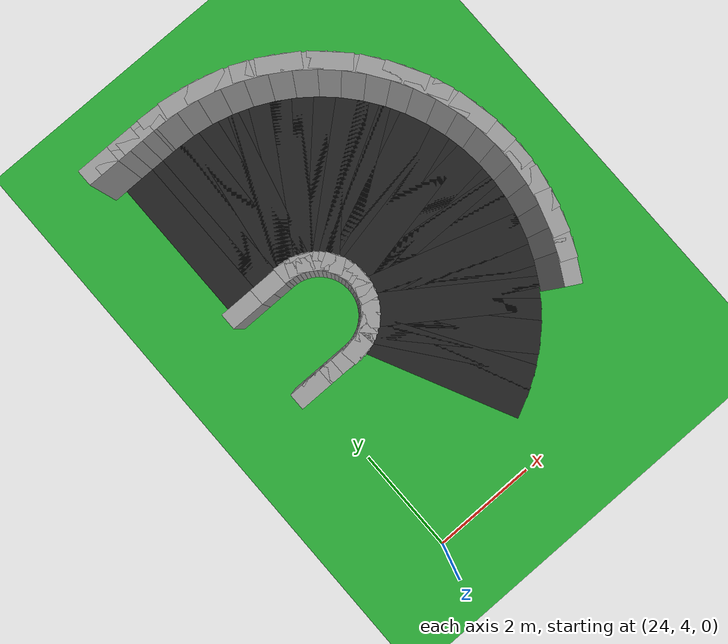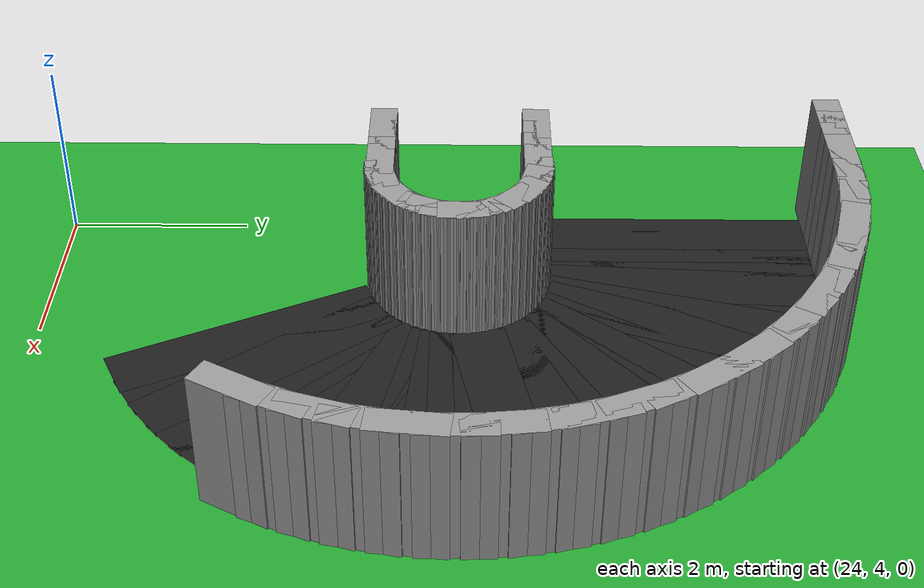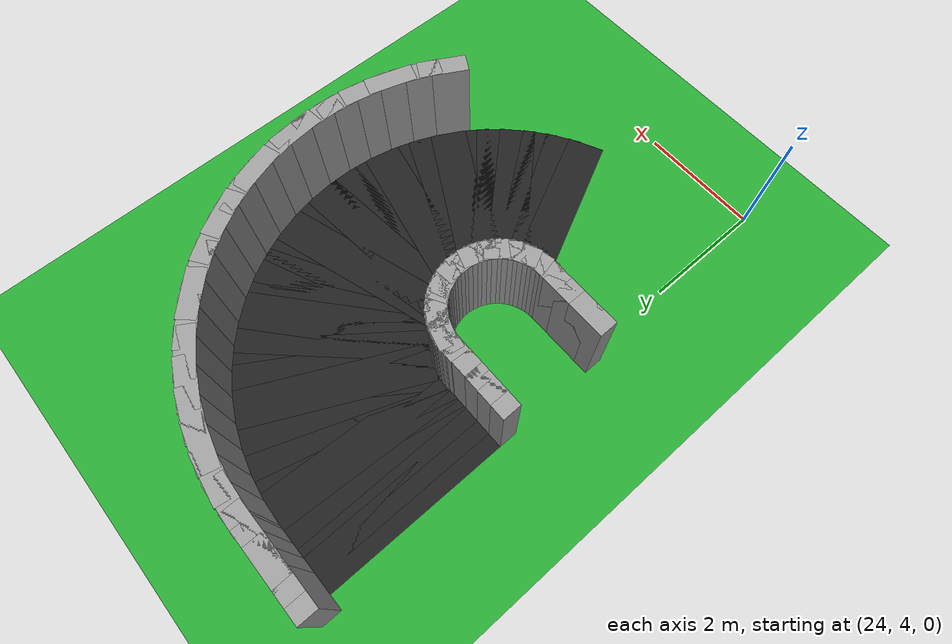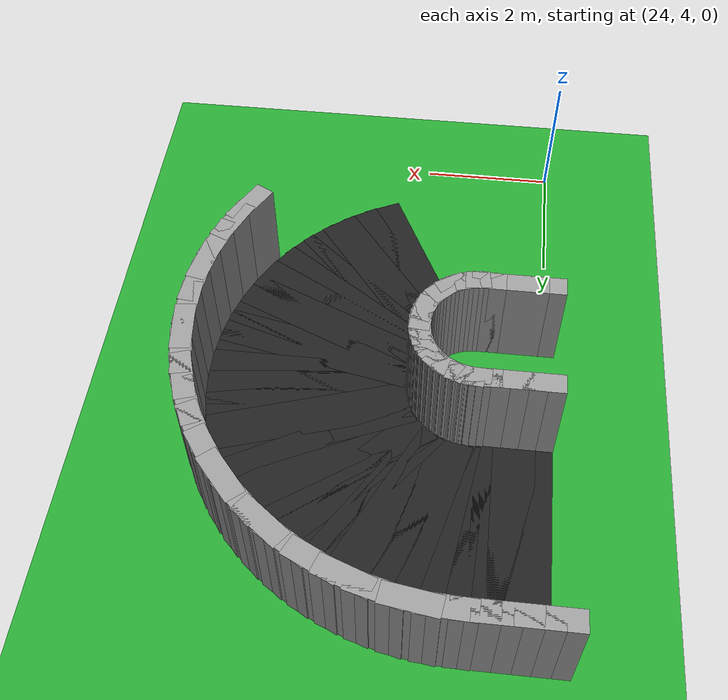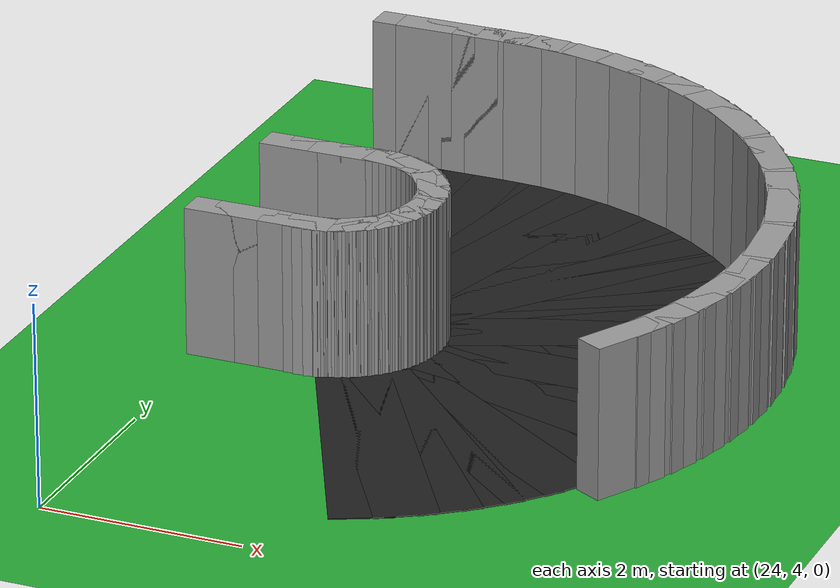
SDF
<sdf version="1.6">
 <world name="loop_extreme">
  <include><uri>model://sun</uri></include>
  <model name="ground_plane">
   <static>true</static>
   <link name="link">
    <collision name="collision">
     <surface><friction><ode><mu>100</mu><mu2>50</mu2></ode></friction></surface>
     <geometry><plane><normal>0 0 1</normal><size>120 120</size></plane></geometry>
    </collision>
    <visual name="visual">
     <geometry><plane><normal>0 0 1</normal><size>120 120</size></plane></geometry>
     <material>
      <script><uri>file://media/materials/scripts/gazebo.material</uri><name>Gazebo/Green</name></script>
     </material>
    </visual>
   </link>
  </model>
  <model name="curbL_110">
   <static>true</static>
   <pose>24.127 7.652 0.750 0 0 0.00000</pose>
   <link name="link">
    <collision name="collision"><geometry><box><size>0.610 0.300 1.500</size></box></geometry></collision>
    <visual name="visual">
     <geometry><box><size>0.610 0.300 1.500</size></box></geometry>
     <material>
      <script><uri>file://media/materials/scripts/gazebo.material</uri><name>Gazebo/Grey</name></script>
     </material>
    </visual>
   </link>
  </model>
  <model name="curbL_111">
   <static>true</static>
   <pose>24.377 7.652 0.750 0 0 0.00000</pose>
   <link name="link">
    <collision name="collision"><geometry><box><size>0.610 0.300 1.500</size></box></geometry></collision>
    <visual name="visual">
     <geometry><box><size>0.610 0.300 1.500</size></box></geometry>
     <material>
      <script><uri>file://media/materials/scripts/gazebo.material</uri><name>Gazebo/Grey</name></script>
     </material>
    </visual>
   </link>
  </model>
  <model name="curbL_112">
   <static>true</static>
   <pose>24.627 7.652 0.750 0 0 0.00000</pose>
   <link name="link">
    <collision name="collision"><geometry><box><size>0.610 0.300 1.500</size></box></geometry></collision>
    <visual name="visual">
     <geometry><box><size>0.610 0.300 1.500</size></box></geometry>
     <material>
      <script><uri>file://media/materials/scripts/gazebo.material</uri><name>Gazebo/Grey</name></script>
     </material>
    </visual>
   </link>
  </model>
  <model name="curbL_113">
   <static>true</static>
   <pose>24.877 7.652 0.750 0 0 0.00000</pose>
   <link name="link">
    <collision name="collision"><geometry><box><size>0.610 0.300 1.500</size></box></geometry></collision>
    <visual name="visual">
     <geometry><box><size>0.610 0.300 1.500</size></box></geometry>
     <material>
      <script><uri>file://media/materials/scripts/gazebo.material</uri><name>Gazebo/Grey</name></script>
     </material>
    </visual>
   </link>
  </model>
  <model name="curbL_114">
   <static>true</static>
   <pose>25.045 7.654 0.750 0 0 0.05067</pose>
   <link name="link">
    <collision name="collision"><geometry><box><size>0.446 0.300 1.500</size></box></geometry></collision>
    <visual name="visual">
     <geometry><box><size>0.446 0.300 1.500</size></box></geometry>
     <material>
      <script><uri>file://media/materials/scripts/gazebo.material</uri><name>Gazebo/Grey</name></script>
     </material>
    </visual>
   </link>
  </model>
  <model name="curbL_115">
   <static>true</static>
   <pose>25.130 7.663 0.750 0 0 0.15201</pose>
   <link name="link">
    <collision name="collision"><geometry><box><size>0.446 0.300 1.500</size></box></geometry></collision>
    <visual name="visual">
     <geometry><box><size>0.446 0.300 1.500</size></box></geometry>
     <material>
      <script><uri>file://media/materials/scripts/gazebo.material</uri><name>Gazebo/Grey</name></script>
     </material>
    </visual>
   </link>
  </model>
  <model name="curbL_116">
   <static>true</static>
   <pose>25.215 7.680 0.750 0 0 0.25335</pose>
   <link name="link">
    <collision name="collision"><geometry><box><size>0.446 0.300 1.500</size></box></geometry></collision>
    <visual name="visual">
     <geometry><box><size>0.446 0.300 1.500</size></box></geometry>
     <material>
      <script><uri>file://media/materials/scripts/gazebo.material</uri><name>Gazebo/Grey</name></script>
     </material>
    </visual>
   </link>
  </model>
  <model name="curbL_117">
   <static>true</static>
   <pose>25.297 7.706 0.750 0 0 0.35470</pose>
   <link name="link">
    <collision name="collision"><geometry><box><size>0.446 0.300 1.500</size></box></geometry></collision>
    <visual name="visual">
     <geometry><box><size>0.446 0.300 1.500</size></box></geometry>
     <material>
      <script><uri>file://media/materials/scripts/gazebo.material</uri><name>Gazebo/Grey</name></script>
     </material>
    </visual>
   </link>
  </model>
  <model name="asphalt_118">
   <static>true</static>
   <pose>26.102 6.260 0.005 0 0 0.45604</pose>
   <link name="link">
    <visual name="visual">
     <geometry><box><size>0.613 3.000 0.010</size></box></geometry>
     <material>
      <script><uri>file://media/materials/scripts/gazebo.material</uri><name>Gazebo/Black</name></script>
     </material>
    </visual>
   </link>
  </model>
  <model name="curbL_118">
   <static>true</static>
   <pose>25.376 7.740 0.750 0 0 0.45604</pose>
   <link name="link">
    <collision name="collision"><geometry><box><size>0.446 0.300 1.500</size></box></geometry></collision>
    <visual name="visual">
     <geometry><box><size>0.446 0.300 1.500</size></box></geometry>
     <material>
      <script><uri>file://media/materials/scripts/gazebo.material</uri><name>Gazebo/Grey</name></script>
     </material>
    </visual>
   </link>
  </model>
  <model name="asphalt_119">
   <static>true</static>
   <pose>26.323 6.383 0.005 0 0 0.55738</pose>
   <link name="link">
    <visual name="visual">
     <geometry><box><size>0.613 3.000 0.010</size></box></geometry>
     <material>
      <script><uri>file://media/materials/scripts/gazebo.material</uri><name>Gazebo/Black</name></script>
     </material>
    </visual>
   </link>
  </model>
  <model name="curbL_119">
   <static>true</static>
   <pose>25.451 7.781 0.750 0 0 0.55738</pose>
   <link name="link">
    <collision name="collision"><geometry><box><size>0.446 0.300 1.500</size></box></geometry></collision>
    <visual name="visual">
     <geometry><box><size>0.446 0.300 1.500</size></box></geometry>
     <material>
      <script><uri>file://media/materials/scripts/gazebo.material</uri><name>Gazebo/Grey</name></script>
     </material>
    </visual>
   </link>
  </model>
  <model name="asphalt_120">
   <static>true</static>
   <pose>26.531 6.528 0.005 0 0 0.65872</pose>
   <link name="link">
    <visual name="visual">
     <geometry><box><size>0.613 3.000 0.010</size></box></geometry>
     <material>
      <script><uri>file://media/materials/scripts/gazebo.material</uri><name>Gazebo/Black</name></script>
     </material>
    </visual>
   </link>
  </model>
  <model name="curbL_120">
   <static>true</static>
   <pose>25.522 7.831 0.750 0 0 0.65872</pose>
   <link name="link">
    <collision name="collision"><geometry><box><size>0.446 0.300 1.500</size></box></geometry></collision>
    <visual name="visual">
     <geometry><box><size>0.446 0.300 1.500</size></box></geometry>
     <material>
      <script><uri>file://media/materials/scripts/gazebo.material</uri><name>Gazebo/Grey</name></script>
     </material>
    </visual>
   </link>
  </model>
  <model name="asphalt_121">
   <static>true</static>
   <pose>26.723 6.692 0.005 0 0 0.76006</pose>
   <link name="link">
    <visual name="visual">
     <geometry><box><size>0.613 3.000 0.010</size></box></geometry>
     <material>
      <script><uri>file://media/materials/scripts/gazebo.material</uri><name>Gazebo/Black</name></script>
     </material>
    </visual>
   </link>
  </model>
  <model name="curbL_121">
   <static>true</static>
   <pose>25.587 7.887 0.750 0 0 0.76006</pose>
   <link name="link">
    <collision name="collision"><geometry><box><size>0.446 0.300 1.500</size></box></geometry></collision>
    <visual name="visual">
     <geometry><box><size>0.446 0.300 1.500</size></box></geometry>
     <material>
      <script><uri>file://media/materials/scripts/gazebo.material</uri><name>Gazebo/Grey</name></script>
     </material>
    </visual>
   </link>
  </model>
  <model name="asphalt_122">
   <static>true</static>
   <pose>26.897 6.876 0.005 0 0 0.86140</pose>
   <link name="link">
    <visual name="visual">
     <geometry><box><size>0.613 3.000 0.010</size></box></geometry>
     <material>
      <script><uri>file://media/materials/scripts/gazebo.material</uri><name>Gazebo/Black</name></script>
     </material>
    </visual>
   </link>
  </model>
  <model name="curbL_122">
   <static>true</static>
   <pose>25.647 7.949 0.750 0 0 0.86140</pose>
   <link name="link">
    <collision name="collision"><geometry><box><size>0.446 0.300 1.500</size></box></geometry></collision>
    <visual name="visual">
     <geometry><box><size>0.446 0.300 1.500</size></box></geometry>
     <material>
      <script><uri>file://media/materials/scripts/gazebo.material</uri><name>Gazebo/Grey</name></script>
     </material>
    </visual>
   </link>
  </model>
  <model name="asphalt_123">
   <static>true</static>
   <pose>27.052 7.076 0.005 0 0 0.96275</pose>
   <link name="link">
    <visual name="visual">
     <geometry><box><size>0.613 3.000 0.010</size></box></geometry>
     <material>
      <script><uri>file://media/materials/scripts/gazebo.material</uri><name>Gazebo/Black</name></script>
     </material>
    </visual>
   </link>
  </model>
  <model name="curbL_123">
   <static>true</static>
   <pose>25.699 8.017 0.750 0 0 0.96275</pose>
   <link name="link">
    <collision name="collision"><geometry><box><size>0.446 0.300 1.500</size></box></geometry></collision>
    <visual name="visual">
     <geometry><box><size>0.446 0.300 1.500</size></box></geometry>
     <material>
      <script><uri>file://media/materials/scripts/gazebo.material</uri><name>Gazebo/Grey</name></script>
     </material>
    </visual>
   </link>
  </model>
  <model name="asphalt_124">
   <static>true</static>
   <pose>27.186 7.291 0.005 0 0 1.06409</pose>
   <link name="link">
    <visual name="visual">
     <geometry><box><size>0.613 3.000 0.010</size></box></geometry>
     <material>
      <script><uri>file://media/materials/scripts/gazebo.material</uri><name>Gazebo/Black</name></script>
     </material>
    </visual>
   </link>
  </model>
  <model name="curbL_124">
   <static>true</static>
   <pose>25.745 8.090 0.750 0 0 1.06409</pose>
   <link name="link">
    <collision name="collision"><geometry><box><size>0.446 0.300 1.500</size></box></geometry></collision>
    <visual name="visual">
     <geometry><box><size>0.446 0.300 1.500</size></box></geometry>
     <material>
      <script><uri>file://media/materials/scripts/gazebo.material</uri><name>Gazebo/Grey</name></script>
     </material>
    </visual>
   </link>
  </model>
  <model name="curbR_124">
   <static>true</static>
   <pose>28.627 6.491 0.750 0 0 1.06409</pose>
   <link name="link">
    <collision name="collision"><geometry><box><size>0.780 0.300 1.500</size></box></geometry></collision>
    <visual name="visual">
     <geometry><box><size>0.780 0.300 1.500</size></box></geometry>
     <material>
      <script><uri>file://media/materials/scripts/gazebo.material</uri><name>Gazebo/Grey</name></script>
     </material>
    </visual>
   </link>
  </model>
  <model name="asphalt_125">
   <static>true</static>
   <pose>27.297 7.518 0.005 0 0 1.16543</pose>
   <link name="link">
    <visual name="visual">
     <geometry><box><size>0.613 3.000 0.010</size></box></geometry>
     <material>
      <script><uri>file://media/materials/scripts/gazebo.material</uri><name>Gazebo/Black</name></script>
     </material>
    </visual>
   </link>
  </model>
  <model name="curbL_125">
   <static>true</static>
   <pose>25.783 8.168 0.750 0 0 1.16543</pose>
   <link name="link">
    <collision name="collision"><geometry><box><size>0.446 0.300 1.500</size></box></geometry></collision>
    <visual name="visual">
     <geometry><box><size>0.446 0.300 1.500</size></box></geometry>
     <material>
      <script><uri>file://media/materials/scripts/gazebo.material</uri><name>Gazebo/Grey</name></script>
     </material>
    </visual>
   </link>
  </model>
  <model name="curbR_125">
   <static>true</static>
   <pose>28.811 6.868 0.750 0 0 1.16543</pose>
   <link name="link">
    <collision name="collision"><geometry><box><size>0.780 0.300 1.500</size></box></geometry></collision>
    <visual name="visual">
     <geometry><box><size>0.780 0.300 1.500</size></box></geometry>
     <material>
      <script><uri>file://media/materials/scripts/gazebo.material</uri><name>Gazebo/Grey</name></script>
     </material>
    </visual>
   </link>
  </model>
  <model name="asphalt_126">
   <static>true</static>
   <pose>27.385 7.755 0.005 0 0 1.26677</pose>
   <link name="link">
    <visual name="visual">
     <geometry><box><size>0.613 3.000 0.010</size></box></geometry>
     <material>
      <script><uri>file://media/materials/scripts/gazebo.material</uri><name>Gazebo/Black</name></script>
     </material>
    </visual>
   </link>
  </model>
  <model name="curbL_126">
   <static>true</static>
   <pose>25.813 8.248 0.750 0 0 1.26677</pose>
   <link name="link">
    <collision name="collision"><geometry><box><size>0.446 0.300 1.500</size></box></geometry></collision>
    <visual name="visual">
     <geometry><box><size>0.446 0.300 1.500</size></box></geometry>
     <material>
      <script><uri>file://media/materials/scripts/gazebo.material</uri><name>Gazebo/Grey</name></script>
     </material>
    </visual>
   </link>
  </model>
  <model name="curbR_126">
   <static>true</static>
   <pose>28.957 7.262 0.750 0 0 1.26677</pose>
   <link name="link">
    <collision name="collision"><geometry><box><size>0.780 0.300 1.500</size></box></geometry></collision>
    <visual name="visual">
     <geometry><box><size>0.780 0.300 1.500</size></box></geometry>
     <material>
      <script><uri>file://media/materials/scripts/gazebo.material</uri><name>Gazebo/Grey</name></script>
     </material>
    </visual>
   </link>
  </model>
  <model name="asphalt_127">
   <static>true</static>
   <pose>27.448 8.000 0.005 0 0 1.36811</pose>
   <link name="link">
    <visual name="visual">
     <geometry><box><size>0.613 3.000 0.010</size></box></geometry>
     <material>
      <script><uri>file://media/materials/scripts/gazebo.material</uri><name>Gazebo/Black</name></script>
     </material>
    </visual>
   </link>
  </model>
  <model name="curbL_127">
   <static>true</static>
   <pose>25.834 8.332 0.750 0 0 1.36811</pose>
   <link name="link">
    <collision name="collision"><geometry><box><size>0.446 0.300 1.500</size></box></geometry></collision>
    <visual name="visual">
     <geometry><box><size>0.446 0.300 1.500</size></box></geometry>
     <material>
      <script><uri>file://media/materials/scripts/gazebo.material</uri><name>Gazebo/Grey</name></script>
     </material>
    </visual>
   </link>
  </model>
  <model name="curbR_127">
   <static>true</static>
   <pose>29.063 7.668 0.750 0 0 1.36811</pose>
   <link name="link">
    <collision name="collision"><geometry><box><size>0.780 0.300 1.500</size></box></geometry></collision>
    <visual name="visual">
     <geometry><box><size>0.780 0.300 1.500</size></box></geometry>
     <material>
      <script><uri>file://media/materials/scripts/gazebo.material</uri><name>Gazebo/Grey</name></script>
     </material>
    </visual>
   </link>
  </model>
  <model name="asphalt_128">
   <static>true</static>
   <pose>27.487 8.250 0.005 0 0 1.46945</pose>
   <link name="link">
    <visual name="visual">
     <geometry><box><size>0.613 3.000 0.010</size></box></geometry>
     <material>
      <script><uri>file://media/materials/scripts/gazebo.material</uri><name>Gazebo/Black</name></script>
     </material>
    </visual>
   </link>
  </model>
  <model name="curbL_128">
   <static>true</static>
   <pose>25.847 8.417 0.750 0 0 1.46945</pose>
   <link name="link">
    <collision name="collision"><geometry><box><size>0.446 0.300 1.500</size></box></geometry></collision>
    <visual name="visual">
     <geometry><box><size>0.446 0.300 1.500</size></box></geometry>
     <material>
      <script><uri>file://media/materials/scripts/gazebo.material</uri><name>Gazebo/Grey</name></script>
     </material>
    </visual>
   </link>
  </model>
  <model name="curbR_128">
   <static>true</static>
   <pose>29.126 8.083 0.750 0 0 1.46945</pose>
   <link name="link">
    <collision name="collision"><geometry><box><size>0.780 0.300 1.500</size></box></geometry></collision>
    <visual name="visual">
     <geometry><box><size>0.780 0.300 1.500</size></box></geometry>
     <material>
      <script><uri>file://media/materials/scripts/gazebo.material</uri><name>Gazebo/Grey</name></script>
     </material>
    </visual>
   </link>
  </model>
  <model name="asphalt_129">
   <static>true</static>
   <pose>27.500 8.503 0.005 0 0 1.57080</pose>
   <link name="link">
    <visual name="visual">
     <geometry><box><size>0.613 3.000 0.010</size></box></geometry>
     <material>
      <script><uri>file://media/materials/scripts/gazebo.material</uri><name>Gazebo/Black</name></script>
     </material>
    </visual>
   </link>
  </model>
  <model name="curbL_129">
   <static>true</static>
   <pose>25.852 8.503 0.750 0 0 1.57080</pose>
   <link name="link">
    <collision name="collision"><geometry><box><size>0.446 0.300 1.500</size></box></geometry></collision>
    <visual name="visual">
     <geometry><box><size>0.446 0.300 1.500</size></box></geometry>
     <material>
      <script><uri>file://media/materials/scripts/gazebo.material</uri><name>Gazebo/Grey</name></script>
     </material>
    </visual>
   </link>
  </model>
  <model name="curbR_129">
   <static>true</static>
   <pose>29.147 8.503 0.750 0 0 1.57080</pose>
   <link name="link">
    <collision name="collision"><geometry><box><size>0.780 0.300 1.500</size></box></geometry></collision>
    <visual name="visual">
     <geometry><box><size>0.780 0.300 1.500</size></box></geometry>
     <material>
      <script><uri>file://media/materials/scripts/gazebo.material</uri><name>Gazebo/Grey</name></script>
     </material>
    </visual>
   </link>
  </model>
  <model name="asphalt_130">
   <static>true</static>
   <pose>27.487 8.755 0.005 0 0 1.67214</pose>
   <link name="link">
    <visual name="visual">
     <geometry><box><size>0.613 3.000 0.010</size></box></geometry>
     <material>
      <script><uri>file://media/materials/scripts/gazebo.material</uri><name>Gazebo/Black</name></script>
     </material>
    </visual>
   </link>
  </model>
  <model name="curbL_130">
   <static>true</static>
   <pose>25.847 8.589 0.750 0 0 1.67214</pose>
   <link name="link">
    <collision name="collision"><geometry><box><size>0.446 0.300 1.500</size></box></geometry></collision>
    <visual name="visual">
     <geometry><box><size>0.446 0.300 1.500</size></box></geometry>
     <material>
      <script><uri>file://media/materials/scripts/gazebo.material</uri><name>Gazebo/Grey</name></script>
     </material>
    </visual>
   </link>
  </model>
  <model name="curbR_130">
   <static>true</static>
   <pose>29.126 8.922 0.750 0 0 1.67214</pose>
   <link name="link">
    <collision name="collision"><geometry><box><size>0.780 0.300 1.500</size></box></geometry></collision>
    <visual name="visual">
     <geometry><box><size>0.780 0.300 1.500</size></box></geometry>
     <material>
      <script><uri>file://media/materials/scripts/gazebo.material</uri><name>Gazebo/Grey</name></script>
     </material>
    </visual>
   </link>
  </model>
  <model name="asphalt_131">
   <static>true</static>
   <pose>27.448 9.006 0.005 0 0 1.77348</pose>
   <link name="link">
    <visual name="visual">
     <geometry><box><size>0.613 3.000 0.010</size></box></geometry>
     <material>
      <script><uri>file://media/materials/scripts/gazebo.material</uri><name>Gazebo/Black</name></script>
     </material>
    </visual>
   </link>
  </model>
  <model name="curbL_131">
   <static>true</static>
   <pose>25.834 8.674 0.750 0 0 1.77348</pose>
   <link name="link">
    <collision name="collision"><geometry><box><size>0.446 0.300 1.500</size></box></geometry></collision>
    <visual name="visual">
     <geometry><box><size>0.446 0.300 1.500</size></box></geometry>
     <material>
      <script><uri>file://media/materials/scripts/gazebo.material</uri><name>Gazebo/Grey</name></script>
     </material>
    </visual>
   </link>
  </model>
  <model name="curbR_131">
   <static>true</static>
   <pose>29.063 9.337 0.750 0 0 1.77348</pose>
   <link name="link">
    <collision name="collision"><geometry><box><size>0.780 0.300 1.500</size></box></geometry></collision>
    <visual name="visual">
     <geometry><box><size>0.780 0.300 1.500</size></box></geometry>
     <material>
      <script><uri>file://media/materials/scripts/gazebo.material</uri><name>Gazebo/Grey</name></script>
     </material>
    </visual>
   </link>
  </model>
  <model name="asphalt_132">
   <static>true</static>
   <pose>27.385 9.251 0.005 0 0 1.87482</pose>
   <link name="link">
    <visual name="visual">
     <geometry><box><size>0.613 3.000 0.010</size></box></geometry>
     <material>
      <script><uri>file://media/materials/scripts/gazebo.material</uri><name>Gazebo/Black</name></script>
     </material>
    </visual>
   </link>
  </model>
  <model name="curbL_132">
   <static>true</static>
   <pose>25.813 8.757 0.750 0 0 1.87482</pose>
   <link name="link">
    <collision name="collision"><geometry><box><size>0.446 0.300 1.500</size></box></geometry></collision>
    <visual name="visual">
     <geometry><box><size>0.446 0.300 1.500</size></box></geometry>
     <material>
      <script><uri>file://media/materials/scripts/gazebo.material</uri><name>Gazebo/Grey</name></script>
     </material>
    </visual>
   </link>
  </model>
  <model name="curbR_132">
   <static>true</static>
   <pose>28.957 9.744 0.750 0 0 1.87482</pose>
   <link name="link">
    <collision name="collision"><geometry><box><size>0.780 0.300 1.500</size></box></geometry></collision>
    <visual name="visual">
     <geometry><box><size>0.780 0.300 1.500</size></box></geometry>
     <material>
      <script><uri>file://media/materials/scripts/gazebo.material</uri><name>Gazebo/Grey</name></script>
     </material>
    </visual>
   </link>
  </model>
  <model name="asphalt_133">
   <static>true</static>
   <pose>27.297 9.488 0.005 0 0 1.97616</pose>
   <link name="link">
    <visual name="visual">
     <geometry><box><size>0.613 3.000 0.010</size></box></geometry>
     <material>
      <script><uri>file://media/materials/scripts/gazebo.material</uri><name>Gazebo/Black</name></script>
     </material>
    </visual>
   </link>
  </model>
  <model name="curbL_133">
   <static>true</static>
   <pose>25.783 8.838 0.750 0 0 1.97616</pose>
   <link name="link">
    <collision name="collision"><geometry><box><size>0.446 0.300 1.500</size></box></geometry></collision>
    <visual name="visual">
     <geometry><box><size>0.446 0.300 1.500</size></box></geometry>
     <material>
      <script><uri>file://media/materials/scripts/gazebo.material</uri><name>Gazebo/Grey</name></script>
     </material>
    </visual>
   </link>
  </model>
  <model name="curbR_133">
   <static>true</static>
   <pose>28.811 10.138 0.750 0 0 1.97616</pose>
   <link name="link">
    <collision name="collision"><geometry><box><size>0.780 0.300 1.500</size></box></geometry></collision>
    <visual name="visual">
     <geometry><box><size>0.780 0.300 1.500</size></box></geometry>
     <material>
      <script><uri>file://media/materials/scripts/gazebo.material</uri><name>Gazebo/Grey</name></script>
     </material>
    </visual>
   </link>
  </model>
  <model name="asphalt_134">
   <static>true</static>
   <pose>27.186 9.715 0.005 0 0 2.07750</pose>
   <link name="link">
    <visual name="visual">
     <geometry><box><size>0.613 3.000 0.010</size></box></geometry>
     <material>
      <script><uri>file://media/materials/scripts/gazebo.material</uri><name>Gazebo/Black</name></script>
     </material>
    </visual>
   </link>
  </model>
  <model name="curbL_134">
   <static>true</static>
   <pose>25.745 8.915 0.750 0 0 2.07750</pose>
   <link name="link">
    <collision name="collision"><geometry><box><size>0.446 0.300 1.500</size></box></geometry></collision>
    <visual name="visual">
     <geometry><box><size>0.446 0.300 1.500</size></box></geometry>
     <material>
      <script><uri>file://media/materials/scripts/gazebo.material</uri><name>Gazebo/Grey</name></script>
     </material>
    </visual>
   </link>
  </model>
  <model name="curbR_134">
   <static>true</static>
   <pose>28.627 10.515 0.750 0 0 2.07750</pose>
   <link name="link">
    <collision name="collision"><geometry><box><size>0.780 0.300 1.500</size></box></geometry></collision>
    <visual name="visual">
     <geometry><box><size>0.780 0.300 1.500</size></box></geometry>
     <material>
      <script><uri>file://media/materials/scripts/gazebo.material</uri><name>Gazebo/Grey</name></script>
     </material>
    </visual>
   </link>
  </model>
  <model name="asphalt_135">
   <static>true</static>
   <pose>27.052 9.930 0.005 0 0 2.17885</pose>
   <link name="link">
    <visual name="visual">
     <geometry><box><size>0.613 3.000 0.010</size></box></geometry>
     <material>
      <script><uri>file://media/materials/scripts/gazebo.material</uri><name>Gazebo/Black</name></script>
     </material>
    </visual>
   </link>
  </model>
  <model name="curbL_135">
   <static>true</static>
   <pose>25.699 8.988 0.750 0 0 2.17885</pose>
   <link name="link">
    <collision name="collision"><geometry><box><size>0.446 0.300 1.500</size></box></geometry></collision>
    <visual name="visual">
     <geometry><box><size>0.446 0.300 1.500</size></box></geometry>
     <material>
      <script><uri>file://media/materials/scripts/gazebo.material</uri><name>Gazebo/Grey</name></script>
     </material>
    </visual>
   </link>
  </model>
  <model name="curbR_135">
   <static>true</static>
   <pose>28.404 10.871 0.750 0 0 2.17885</pose>
   <link name="link">
    <collision name="collision"><geometry><box><size>0.780 0.300 1.500</size></box></geometry></collision>
    <visual name="visual">
     <geometry><box><size>0.780 0.300 1.500</size></box></geometry>
     <material>
      <script><uri>file://media/materials/scripts/gazebo.material</uri><name>Gazebo/Grey</name></script>
     </material>
    </visual>
   </link>
  </model>
  <model name="asphalt_136">
   <static>true</static>
   <pose>26.897 10.130 0.005 0 0 2.28019</pose>
   <link name="link">
    <visual name="visual">
     <geometry><box><size>0.613 3.000 0.010</size></box></geometry>
     <material>
      <script><uri>file://media/materials/scripts/gazebo.material</uri><name>Gazebo/Black</name></script>
     </material>
    </visual>
   </link>
  </model>
  <model name="curbL_136">
   <static>true</static>
   <pose>25.647 9.056 0.750 0 0 2.28019</pose>
   <link name="link">
    <collision name="collision"><geometry><box><size>0.446 0.300 1.500</size></box></geometry></collision>
    <visual name="visual">
     <geometry><box><size>0.446 0.300 1.500</size></box></geometry>
     <material>
      <script><uri>file://media/materials/scripts/gazebo.material</uri><name>Gazebo/Grey</name></script>
     </material>
    </visual>
   </link>
  </model>
  <model name="curbR_136">
   <static>true</static>
   <pose>28.147 11.203 0.750 0 0 2.28019</pose>
   <link name="link">
    <collision name="collision"><geometry><box><size>0.780 0.300 1.500</size></box></geometry></collision>
    <visual name="visual">
     <geometry><box><size>0.780 0.300 1.500</size></box></geometry>
     <material>
      <script><uri>file://media/materials/scripts/gazebo.material</uri><name>Gazebo/Grey</name></script>
     </material>
    </visual>
   </link>
  </model>
  <model name="asphalt_137">
   <static>true</static>
   <pose>26.723 10.313 0.005 0 0 2.38153</pose>
   <link name="link">
    <visual name="visual">
     <geometry><box><size>0.613 3.000 0.010</size></box></geometry>
     <material>
      <script><uri>file://media/materials/scripts/gazebo.material</uri><name>Gazebo/Black</name></script>
     </material>
    </visual>
   </link>
  </model>
  <model name="curbL_137">
   <static>true</static>
   <pose>25.587 9.119 0.750 0 0 2.38153</pose>
   <link name="link">
    <collision name="collision"><geometry><box><size>0.446 0.300 1.500</size></box></geometry></collision>
    <visual name="visual">
     <geometry><box><size>0.446 0.300 1.500</size></box></geometry>
     <material>
      <script><uri>file://media/materials/scripts/gazebo.material</uri><name>Gazebo/Grey</name></script>
     </material>
    </visual>
   </link>
  </model>
  <model name="curbR_137">
   <static>true</static>
   <pose>27.858 11.508 0.750 0 0 2.38153</pose>
   <link name="link">
    <collision name="collision"><geometry><box><size>0.780 0.300 1.500</size></box></geometry></collision>
    <visual name="visual">
     <geometry><box><size>0.780 0.300 1.500</size></box></geometry>
     <material>
      <script><uri>file://media/materials/scripts/gazebo.material</uri><name>Gazebo/Grey</name></script>
     </material>
    </visual>
   </link>
  </model>
  <model name="asphalt_138">
   <static>true</static>
   <pose>26.531 10.478 0.005 0 0 2.48287</pose>
   <link name="link">
    <visual name="visual">
     <geometry><box><size>0.613 3.000 0.010</size></box></geometry>
     <material>
      <script><uri>file://media/materials/scripts/gazebo.material</uri><name>Gazebo/Black</name></script>
     </material>
    </visual>
   </link>
  </model>
  <model name="curbL_138">
   <static>true</static>
   <pose>25.522 9.175 0.750 0 0 2.48287</pose>
   <link name="link">
    <collision name="collision"><geometry><box><size>0.446 0.300 1.500</size></box></geometry></collision>
    <visual name="visual">
     <geometry><box><size>0.446 0.300 1.500</size></box></geometry>
     <material>
      <script><uri>file://media/materials/scripts/gazebo.material</uri><name>Gazebo/Grey</name></script>
     </material>
    </visual>
   </link>
  </model>
  <model name="curbR_138">
   <static>true</static>
   <pose>27.539 11.781 0.750 0 0 2.48287</pose>
   <link name="link">
    <collision name="collision"><geometry><box><size>0.780 0.300 1.500</size></box></geometry></collision>
    <visual name="visual">
     <geometry><box><size>0.780 0.300 1.500</size></box></geometry>
     <material>
      <script><uri>file://media/materials/scripts/gazebo.material</uri><name>Gazebo/Grey</name></script>
     </material>
    </visual>
   </link>
  </model>
  <model name="asphalt_139">
   <static>true</static>
   <pose>26.323 10.623 0.005 0 0 2.58421</pose>
   <link name="link">
    <visual name="visual">
     <geometry><box><size>0.613 3.000 0.010</size></box></geometry>
     <material>
      <script><uri>file://media/materials/scripts/gazebo.material</uri><name>Gazebo/Black</name></script>
     </material>
    </visual>
   </link>
  </model>
  <model name="curbL_139">
   <static>true</static>
   <pose>25.451 9.224 0.750 0 0 2.58421</pose>
   <link name="link">
    <collision name="collision"><geometry><box><size>0.446 0.300 1.500</size></box></geometry></collision>
    <visual name="visual">
     <geometry><box><size>0.446 0.300 1.500</size></box></geometry>
     <material>
      <script><uri>file://media/materials/scripts/gazebo.material</uri><name>Gazebo/Grey</name></script>
     </material>
    </visual>
   </link>
  </model>
  <model name="curbR_139">
   <static>true</static>
   <pose>27.195 12.021 0.750 0 0 2.58421</pose>
   <link name="link">
    <collision name="collision"><geometry><box><size>0.780 0.300 1.500</size></box></geometry></collision>
    <visual name="visual">
     <geometry><box><size>0.780 0.300 1.500</size></box></geometry>
     <material>
      <script><uri>file://media/materials/scripts/gazebo.material</uri><name>Gazebo/Grey</name></script>
     </material>
    </visual>
   </link>
  </model>
  <model name="asphalt_140">
   <static>true</static>
   <pose>26.102 10.745 0.005 0 0 2.68556</pose>
   <link name="link">
    <visual name="visual">
     <geometry><box><size>0.613 3.000 0.010</size></box></geometry>
     <material>
      <script><uri>file://media/materials/scripts/gazebo.material</uri><name>Gazebo/Black</name></script>
     </material>
    </visual>
   </link>
  </model>
  <model name="curbL_140">
   <static>true</static>
   <pose>25.376 9.266 0.750 0 0 2.68556</pose>
   <link name="link">
    <collision name="collision"><geometry><box><size>0.446 0.300 1.500</size></box></geometry></collision>
    <visual name="visual">
     <geometry><box><size>0.446 0.300 1.500</size></box></geometry>
     <material>
      <script><uri>file://media/materials/scripts/gazebo.material</uri><name>Gazebo/Grey</name></script>
     </material>
    </visual>
   </link>
  </model>
  <model name="curbR_140">
   <static>true</static>
   <pose>26.827 12.225 0.750 0 0 2.68556</pose>
   <link name="link">
    <collision name="collision"><geometry><box><size>0.780 0.300 1.500</size></box></geometry></collision>
    <visual name="visual">
     <geometry><box><size>0.780 0.300 1.500</size></box></geometry>
     <material>
      <script><uri>file://media/materials/scripts/gazebo.material</uri><name>Gazebo/Grey</name></script>
     </material>
    </visual>
   </link>
  </model>
  <model name="asphalt_141">
   <static>true</static>
   <pose>25.869 10.845 0.005 0 0 2.78690</pose>
   <link name="link">
    <visual name="visual">
     <geometry><box><size>0.613 3.000 0.010</size></box></geometry>
     <material>
      <script><uri>file://media/materials/scripts/gazebo.material</uri><name>Gazebo/Black</name></script>
     </material>
    </visual>
   </link>
  </model>
  <model name="curbL_141">
   <static>true</static>
   <pose>25.297 9.300 0.750 0 0 2.78690</pose>
   <link name="link">
    <collision name="collision"><geometry><box><size>0.446 0.300 1.500</size></box></geometry></collision>
    <visual name="visual">
     <geometry><box><size>0.446 0.300 1.500</size></box></geometry>
     <material>
      <script><uri>file://media/materials/scripts/gazebo.material</uri><name>Gazebo/Grey</name></script>
     </material>
    </visual>
   </link>
  </model>
  <model name="curbR_141">
   <static>true</static>
   <pose>26.442 12.390 0.750 0 0 2.78690</pose>
   <link name="link">
    <collision name="collision"><geometry><box><size>0.780 0.300 1.500</size></box></geometry></collision>
    <visual name="visual">
     <geometry><box><size>0.780 0.300 1.500</size></box></geometry>
     <material>
      <script><uri>file://media/materials/scripts/gazebo.material</uri><name>Gazebo/Grey</name></script>
     </material>
    </visual>
   </link>
  </model>
  <model name="asphalt_142">
   <static>true</static>
   <pose>25.628 10.921 0.005 0 0 2.88824</pose>
   <link name="link">
    <visual name="visual">
     <geometry><box><size>0.613 3.000 0.010</size></box></geometry>
     <material>
      <script><uri>file://media/materials/scripts/gazebo.material</uri><name>Gazebo/Black</name></script>
     </material>
    </visual>
   </link>
  </model>
  <model name="curbL_142">
   <static>true</static>
   <pose>25.215 9.326 0.750 0 0 2.88824</pose>
   <link name="link">
    <collision name="collision"><geometry><box><size>0.446 0.300 1.500</size></box></geometry></collision>
    <visual name="visual">
     <geometry><box><size>0.446 0.300 1.500</size></box></geometry>
     <material>
      <script><uri>file://media/materials/scripts/gazebo.material</uri><name>Gazebo/Grey</name></script>
     </material>
    </visual>
   </link>
  </model>
  <model name="curbR_142">
   <static>true</static>
   <pose>26.041 12.516 0.750 0 0 2.88824</pose>
   <link name="link">
    <collision name="collision"><geometry><box><size>0.780 0.300 1.500</size></box></geometry></collision>
    <visual name="visual">
     <geometry><box><size>0.780 0.300 1.500</size></box></geometry>
     <material>
      <script><uri>file://media/materials/scripts/gazebo.material</uri><name>Gazebo/Grey</name></script>
     </material>
    </visual>
   </link>
  </model>
  <model name="asphalt_143">
   <static>true</static>
   <pose>25.380 10.972 0.005 0 0 2.98958</pose>
   <link name="link">
    <visual name="visual">
     <geometry><box><size>0.613 3.000 0.010</size></box></geometry>
     <material>
      <script><uri>file://media/materials/scripts/gazebo.material</uri><name>Gazebo/Black</name></script>
     </material>
    </visual>
   </link>
  </model>
  <model name="curbL_143">
   <static>true</static>
   <pose>25.130 9.343 0.750 0 0 2.98958</pose>
   <link name="link">
    <collision name="collision"><geometry><box><size>0.446 0.300 1.500</size></box></geometry></collision>
    <visual name="visual">
     <geometry><box><size>0.446 0.300 1.500</size></box></geometry>
     <material>
      <script><uri>file://media/materials/scripts/gazebo.material</uri><name>Gazebo/Grey</name></script>
     </material>
    </visual>
   </link>
  </model>
  <model name="curbR_143">
   <static>true</static>
   <pose>25.629 12.601 0.750 0 0 2.98958</pose>
   <link name="link">
    <collision name="collision"><geometry><box><size>0.780 0.300 1.500</size></box></geometry></collision>
    <visual name="visual">
     <geometry><box><size>0.780 0.300 1.500</size></box></geometry>
     <material>
      <script><uri>file://media/materials/scripts/gazebo.material</uri><name>Gazebo/Grey</name></script>
     </material>
    </visual>
   </link>
  </model>
  <model name="asphalt_144">
   <static>true</static>
   <pose>25.128 10.997 0.005 0 0 3.09092</pose>
   <link name="link">
    <visual name="visual">
     <geometry><box><size>0.613 3.000 0.010</size></box></geometry>
     <material>
      <script><uri>file://media/materials/scripts/gazebo.material</uri><name>Gazebo/Black</name></script>
     </material>
    </visual>
   </link>
  </model>
  <model name="curbL_144">
   <static>true</static>
   <pose>25.045 9.352 0.750 0 0 3.09092</pose>
   <link name="link">
    <collision name="collision"><geometry><box><size>0.446 0.300 1.500</size></box></geometry></collision>
    <visual name="visual">
     <geometry><box><size>0.446 0.300 1.500</size></box></geometry>
     <material>
      <script><uri>file://media/materials/scripts/gazebo.material</uri><name>Gazebo/Grey</name></script>
     </material>
    </visual>
   </link>
  </model>
  <model name="curbR_144">
   <static>true</static>
   <pose>25.212 12.643 0.750 0 0 3.09092</pose>
   <link name="link">
    <collision name="collision"><geometry><box><size>0.780 0.300 1.500</size></box></geometry></collision>
    <visual name="visual">
     <geometry><box><size>0.780 0.300 1.500</size></box></geometry>
     <material>
      <script><uri>file://media/materials/scripts/gazebo.material</uri><name>Gazebo/Grey</name></script>
     </material>
    </visual>
   </link>
  </model>
  <model name="asphalt_145">
   <static>true</static>
   <pose>24.877 11.004 0.005 0 0 3.14159</pose>
   <link name="link">
    <visual name="visual">
     <geometry><box><size>0.610 3.000 0.010</size></box></geometry>
     <material>
      <script><uri>file://media/materials/scripts/gazebo.material</uri><name>Gazebo/Black</name></script>
     </material>
    </visual>
   </link>
  </model>
  <model name="curbL_145">
   <static>true</static>
   <pose>24.877 9.354 0.750 0 0 3.14159</pose>
   <link name="link">
    <collision name="collision"><geometry><box><size>0.610 0.300 1.500</size></box></geometry></collision>
    <visual name="visual">
     <geometry><box><size>0.610 0.300 1.500</size></box></geometry>
     <material>
      <script><uri>file://media/materials/scripts/gazebo.material</uri><name>Gazebo/Grey</name></script>
     </material>
    </visual>
   </link>
  </model>
  <model name="curbR_145">
   <static>true</static>
   <pose>24.877 12.654 0.750 0 0 3.14159</pose>
   <link name="link">
    <collision name="collision"><geometry><box><size>0.610 0.300 1.500</size></box></geometry></collision>
    <visual name="visual">
     <geometry><box><size>0.610 0.300 1.500</size></box></geometry>
     <material>
      <script><uri>file://media/materials/scripts/gazebo.material</uri><name>Gazebo/Grey</name></script>
     </material>
    </visual>
   </link>
  </model>
  <model name="asphalt_146">
   <static>true</static>
   <pose>24.627 11.004 0.005 0 0 3.14159</pose>
   <link name="link">
    <visual name="visual">
     <geometry><box><size>0.610 3.000 0.010</size></box></geometry>
     <material>
      <script><uri>file://media/materials/scripts/gazebo.material</uri><name>Gazebo/Black</name></script>
     </material>
    </visual>
   </link>
  </model>
  <model name="curbL_146">
   <static>true</static>
   <pose>24.627 9.354 0.750 0 0 3.14159</pose>
   <link name="link">
    <collision name="collision"><geometry><box><size>0.610 0.300 1.500</size></box></geometry></collision>
    <visual name="visual">
     <geometry><box><size>0.610 0.300 1.500</size></box></geometry>
     <material>
      <script><uri>file://media/materials/scripts/gazebo.material</uri><name>Gazebo/Grey</name></script>
     </material>
    </visual>
   </link>
  </model>
  <model name="curbR_146">
   <static>true</static>
   <pose>24.627 12.654 0.750 0 0 3.14159</pose>
   <link name="link">
    <collision name="collision"><geometry><box><size>0.610 0.300 1.500</size></box></geometry></collision>
    <visual name="visual">
     <geometry><box><size>0.610 0.300 1.500</size></box></geometry>
     <material>
      <script><uri>file://media/materials/scripts/gazebo.material</uri><name>Gazebo/Grey</name></script>
     </material>
    </visual>
   </link>
  </model>
  <model name="asphalt_147">
   <static>true</static>
   <pose>24.377 11.004 0.005 0 0 3.14159</pose>
   <link name="link">
    <visual name="visual">
     <geometry><box><size>0.610 3.000 0.010</size></box></geometry>
     <material>
      <script><uri>file://media/materials/scripts/gazebo.material</uri><name>Gazebo/Black</name></script>
     </material>
    </visual>
   </link>
  </model>
  <model name="curbL_147">
   <static>true</static>
   <pose>24.377 9.354 0.750 0 0 3.14159</pose>
   <link name="link">
    <collision name="collision"><geometry><box><size>0.610 0.300 1.500</size></box></geometry></collision>
    <visual name="visual">
     <geometry><box><size>0.610 0.300 1.500</size></box></geometry>
     <material>
      <script><uri>file://media/materials/scripts/gazebo.material</uri><name>Gazebo/Grey</name></script>
     </material>
    </visual>
   </link>
  </model>
  <model name="curbR_147">
   <static>true</static>
   <pose>24.377 12.654 0.750 0 0 3.14159</pose>
   <link name="link">
    <collision name="collision"><geometry><box><size>0.610 0.300 1.500</size></box></geometry></collision>
    <visual name="visual">
     <geometry><box><size>0.610 0.300 1.500</size></box></geometry>
     <material>
      <script><uri>file://media/materials/scripts/gazebo.material</uri><name>Gazebo/Grey</name></script>
     </material>
    </visual>
   </link>
  </model>
  <model name="asphalt_148">
   <static>true</static>
   <pose>24.127 11.004 0.005 0 0 3.14159</pose>
   <link name="link">
    <visual name="visual">
     <geometry><box><size>0.610 3.000 0.010</size></box></geometry>
     <material>
      <script><uri>file://media/materials/scripts/gazebo.material</uri><name>Gazebo/Black</name></script>
     </material>
    </visual>
   </link>
  </model>
  <model name="curbL_148">
   <static>true</static>
   <pose>24.127 9.354 0.750 0 0 3.14159</pose>
   <link name="link">
    <collision name="collision"><geometry><box><size>0.610 0.300 1.500</size></box></geometry></collision>
    <visual name="visual">
     <geometry><box><size>0.610 0.300 1.500</size></box></geometry>
     <material>
      <script><uri>file://media/materials/scripts/gazebo.material</uri><name>Gazebo/Grey</name></script>
     </material>
    </visual>
   </link>
  </model>
  <model name="curbR_148">
   <static>true</static>
   <pose>24.127 12.654 0.750 0 0 3.14159</pose>
   <link name="link">
    <collision name="collision"><geometry><box><size>0.610 0.300 1.500</size></box></geometry></collision>
    <visual name="visual">
     <geometry><box><size>0.610 0.300 1.500</size></box></geometry>
     <material>
      <script><uri>file://media/materials/scripts/gazebo.material</uri><name>Gazebo/Grey</name></script>
     </material>
    </visual>
   </link>
  </model>
  <model name="curbR_149">
   <static>true</static>
   <pose>23.877 12.654 0.750 0 0 3.14159</pose>
   <link name="link">
    <collision name="collision"><geometry><box><size>0.610 0.300 1.500</size></box></geometry></collision>
    <visual name="visual">
     <geometry><box><size>0.610 0.300 1.500</size></box></geometry>
     <material>
      <script><uri>file://media/materials/scripts/gazebo.material</uri><name>Gazebo/Grey</name></script>
     </material>
    </visual>
   </link>
  </model>
 </world>
</sdf>
